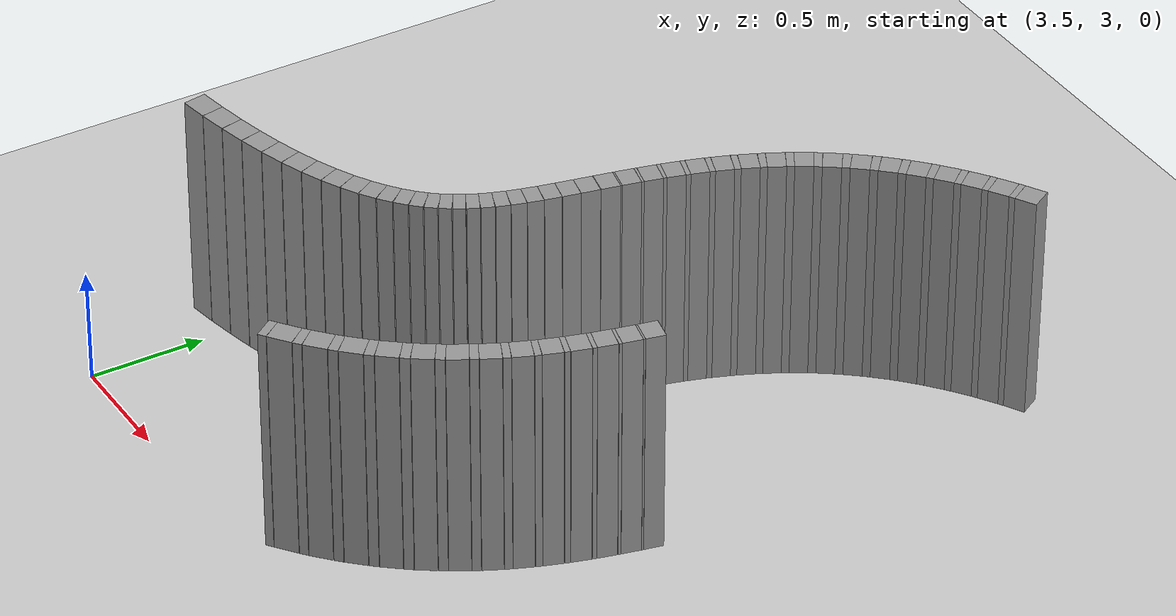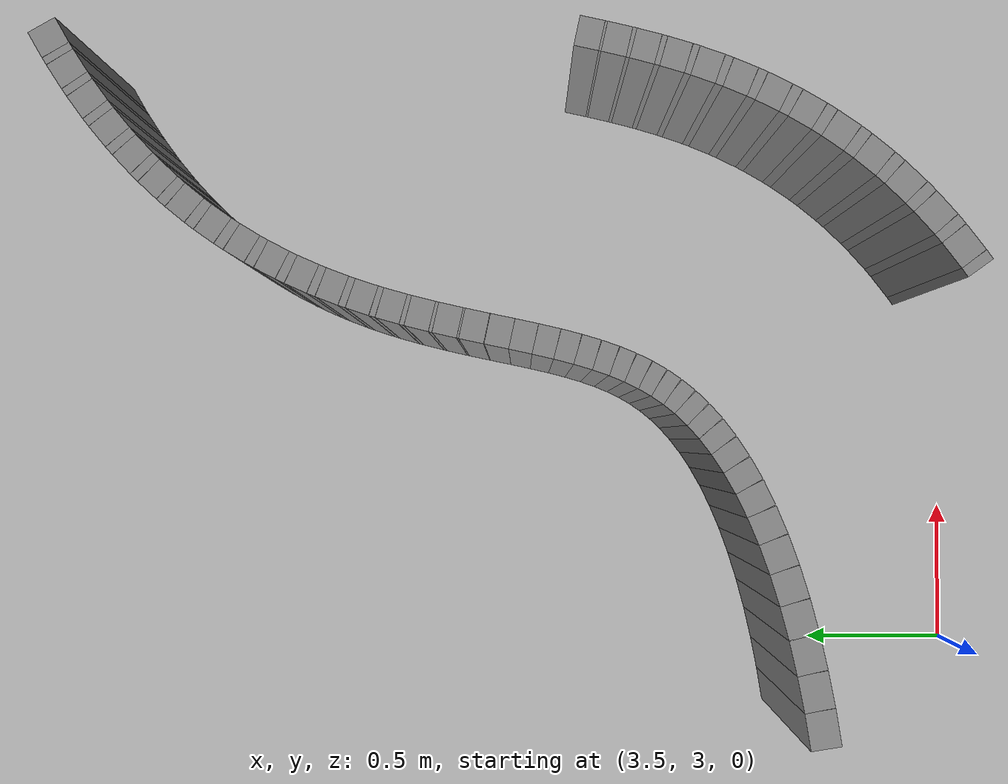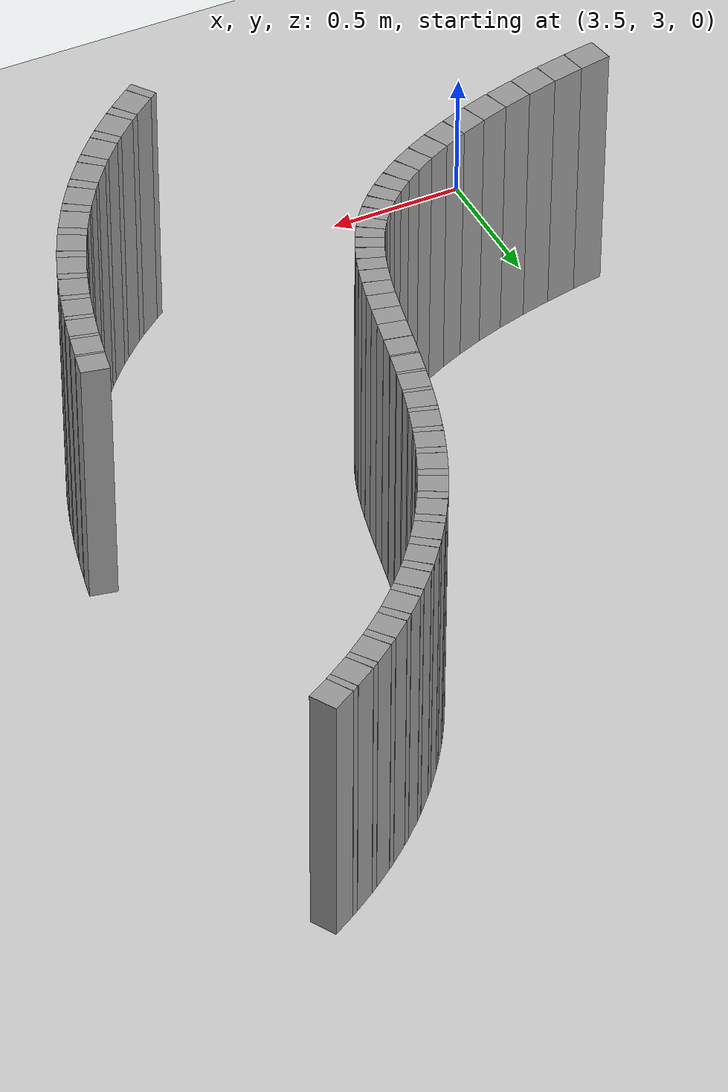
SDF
<sdf version="1.6">
 <world name="default">
  <include><uri>model://ground_plane</uri></include>
  <include><uri>model://sun</uri></include>
  <model name="wall_255_outward">
   <static>true</static>
   <link name="link">
    <collision name="collision">
     <geometry><box><size>0.0823065950242805 0.1 1.0</size></box></geometry>
    </collision>
    <visual name="visual">
     <geometry><box><size>0.0823065950242805 0.1 1.0</size></box></geometry>
     <material>
      <script><uri>file://media/materials/scripts/gazebo.material</uri><name>Gazebo/Gray</name></script>
     </material>
    </visual>
   </link>
   <pose>5.5540342374357845 4.377041698412825 0.5 0 0 -1.7806157218108025</pose>
  </model>
  <model name="wall_256_outward">
   <static>true</static>
   <link name="link">
    <collision name="collision">
     <geometry><box><size>0.007893287443352513 0.1 1.0</size></box></geometry>
    </collision>
    <visual name="visual">
     <geometry><box><size>0.007893287443352513 0.1 1.0</size></box></geometry>
     <material>
      <script><uri>file://media/materials/scripts/gazebo.material</uri><name>Gazebo/Gray</name></script>
     </material>
    </visual>
   </link>
   <pose>5.544610231509431 4.332937473080274 0.5 0 0 -1.788509091220344</pose>
  </model>
  <model name="wall_257_outward">
   <static>true</static>
   <link name="link">
    <collision name="collision">
     <geometry><box><size>0.08276006132037096 0.1 1.0</size></box></geometry>
    </collision>
    <visual name="visual">
     <geometry><box><size>0.08276006132037096 0.1 1.0</size></box></geometry>
     <material>
      <script><uri>file://media/materials/scripts/gazebo.material</uri><name>Gazebo/Gray</name></script>
     </material>
    </visual>
   </link>
   <pose>5.534501172480656 4.2887525869662415 0.5 0 0 -1.7964024606298625</pose>
  </model>
  <model name="wall_258_outward">
   <static>true</static>
   <link name="link">
    <collision name="collision">
     <geometry><box><size>0.012884007476464357 0.1 1.0</size></box></geometry>
    </collision>
    <visual name="visual">
     <geometry><box><size>0.012884007476464357 0.1 1.0</size></box></geometry>
     <material>
      <script><uri>file://media/materials/scripts/gazebo.material</uri><name>Gazebo/Gray</name></script>
     </material>
    </visual>
   </link>
   <pose>5.5237227424820485 4.242161513047656 0.5 0 0 -1.8092868245854612</pose>
  </model>
  <model name="wall_259_outward">
   <static>true</static>
   <link name="link">
    <collision name="collision">
     <geometry><box><size>0.08318186117913362 0.1 1.0</size></box></geometry>
    </collision>
    <visual name="visual">
     <geometry><box><size>0.08318186117913362 0.1 1.0</size></box></geometry>
     <material>
      <script><uri>file://media/materials/scripts/gazebo.material</uri><name>Gazebo/Gray</name></script>
     </material>
    </visual>
   </link>
   <pose>5.511855753227276 4.195618061642035 0.5 0 0 -1.8221711885410317</pose>
  </model>
  <model name="wall_260_outward">
   <static>true</static>
   <link name="link">
    <collision name="collision">
     <geometry><box><size>0.017905885627952804 0.1 1.0</size></box></geometry>
    </collision>
    <visual name="visual">
     <geometry><box><size>0.017905885627952804 0.1 1.0</size></box></geometry>
     <material>
      <script><uri>file://media/materials/scripts/gazebo.material</uri><name>Gazebo/Gray</name></script>
     </material>
    </visual>
   </link>
   <pose>5.4991287651282486 4.14670397863664 0.5 0 0 -1.84007803114011</pose>
  </model>
  <model name="wall_261_outward">
   <static>true</static>
   <link name="link">
    <collision name="collision">
     <geometry><box><size>0.08364015027208513 0.1 1.0</size></box></geometry>
    </collision>
    <visual name="visual">
     <geometry><box><size>0.08364015027208513 0.1 1.0</size></box></geometry>
     <material>
      <script><uri>file://media/materials/scripts/gazebo.material</uri><name>Gazebo/Gray</name></script>
     </material>
    </visual>
   </link>
   <pose>5.484901101588403 4.09796638649427 0.5 0 0 -1.8579848737391937</pose>
  </model>
  <model name="wall_262_outward">
   <static>true</static>
   <link name="link">
    <collision name="collision">
     <geometry><box><size>0.02284983359659462 0.1 1.0</size></box></geometry>
    </collision>
    <visual name="visual">
     <geometry><box><size>0.02284983359659462 0.1 1.0</size></box></geometry>
     <material>
      <script><uri>file://media/materials/scripts/gazebo.material</uri><name>Gazebo/Gray</name></script>
     </material>
    </visual>
   </link>
   <pose>5.469569562087384 4.046978902066114 0.5 0 0 -1.8808366961761713</pose>
  </model>
  <model name="wall_263_outward">
   <static>true</static>
   <link name="link">
    <collision name="collision">
     <geometry><box><size>0.08422196024305521 0.1 1.0</size></box></geometry>
    </collision>
    <visual name="visual">
     <geometry><box><size>0.08422196024305521 0.1 1.0</size></box></geometry>
     <material>
      <script><uri>file://media/materials/scripts/gazebo.material</uri><name>Gazebo/Gray</name></script>
     </material>
    </visual>
   </link>
   <pose>5.4523229196576395 3.9962995733995275 0.5 0 0 -1.9036885186131765</pose>
  </model>
  <model name="wall_264_outward">
   <static>true</static>
   <link name="link">
    <collision name="collision">
     <geometry><box><size>0.027566832550623976 0.1 1.0</size></box></geometry>
    </collision>
    <visual name="visual">
     <geometry><box><size>0.027566832550623976 0.1 1.0</size></box></geometry>
     <material>
      <script><uri>file://media/materials/scripts/gazebo.material</uri><name>Gazebo/Gray</name></script>
     </material>
    </visual>
   </link>
   <pose>5.433700477713545 3.9436028274653827 0.5 0 0 -1.9312588438366614</pose>
  </model>
  <model name="wall_265_outward">
   <static>true</static>
   <link name="link">
    <collision name="collision">
     <geometry><box><size>0.08503293473833458 0.1 1.0</size></box></geometry>
    </collision>
    <visual name="visual">
     <geometry><box><size>0.08503293473833458 0.1 1.0</size></box></geometry>
     <material>
      <script><uri>file://media/materials/scripts/gazebo.material</uri><name>Gazebo/Gray</name></script>
     </material>
    </visual>
   </link>
   <pose>5.412752088556587 3.891349631682776 0.5 0 0 -1.9588291690601691</pose>
  </model>
  <model name="wall_266_outward">
   <static>true</static>
   <link name="link">
    <collision name="collision">
     <geometry><box><size>0.031822554387531975 0.1 1.0</size></box></geometry>
    </collision>
    <visual name="visual">
     <geometry><box><size>0.031822554387531975 0.1 1.0</size></box></geometry>
     <material>
      <script><uri>file://media/materials/scripts/gazebo.material</uri><name>Gazebo/Gray</name></script>
     </material>
    </visual>
   </link>
   <pose>5.390179240938409 3.8374647298475697 0.5 0 0 -1.9906570968808106</pose>
  </model>
  <model name="wall_267_outward">
   <static>true</static>
   <link name="link">
    <collision name="collision">
     <geometry><box><size>0.08618125440583424 0.1 1.0</size></box></geometry>
    </collision>
    <visual name="visual">
     <geometry><box><size>0.08618125440583424 0.1 1.0</size></box></geometry>
     <material>
      <script><uri>file://media/materials/scripts/gazebo.material</uri><name>Gazebo/Gray</name></script>
     </material>
    </visual>
   </link>
   <pose>5.364884840391629 3.7841662914995933 0.5 0 0 -2.0224850247014197</pose>
  </model>
  <model name="wall_268_outward">
   <static>true</static>
   <link name="link">
    <collision name="collision">
     <geometry><box><size>0.03538896782805799 0.1 1.0</size></box></geometry>
    </collision>
    <visual name="visual">
     <geometry><box><size>0.03538896782805799 0.1 1.0</size></box></geometry>
     <material>
      <script><uri>file://media/materials/scripts/gazebo.material</uri><name>Gazebo/Gray</name></script>
     </material>
    </visual>
   </link>
   <pose>5.337794469029871 3.729760535215286 0.5 0 0 -2.0578813834291503</pose>
  </model>
  <model name="wall_269_outward">
   <static>true</static>
   <link name="link">
    <collision name="collision">
     <geometry><box><size>0.0877751730826177 0.1 1.0</size></box></geometry>
    </collision>
    <visual name="visual">
     <geometry><box><size>0.0877751730826177 0.1 1.0</size></box></geometry>
     <material>
      <script><uri>file://media/materials/scripts/gazebo.material</uri><name>Gazebo/Gray</name></script>
     </material>
    </visual>
   </link>
   <pose>5.307611220253905 3.6760916426194035 0.5 0 0 -2.0932777421568702</pose>
  </model>
  <model name="wall_270_outward">
   <static>true</static>
   <link name="link">
    <collision name="collision">
     <geometry><box><size>0.03801697591939937 0.1 1.0</size></box></geometry>
    </collision>
    <visual name="visual">
     <geometry><box><size>0.03801697591939937 0.1 1.0</size></box></geometry>
     <material>
      <script><uri>file://media/materials/scripts/gazebo.material</uri><name>Gazebo/Gray</name></script>
     </material>
    </visual>
   </link>
   <pose>5.2756046897010105 3.6219594706756224 0.5 0 0 -2.1313038816327396</pose>
  </model>
  <model name="wall_271_outward">
   <static>true</static>
   <link name="link">
    <collision name="collision">
     <geometry><box><size>0.0898987762643298 0.1 1.0</size></box></geometry>
    </collision>
    <visual name="visual">
     <geometry><box><size>0.0898987762643298 0.1 1.0</size></box></geometry>
     <material>
      <script><uri>file://media/materials/scripts/gazebo.material</uri><name>Gazebo/Gray</name></script>
     </material>
    </visual>
   </link>
   <pose>5.240173561430167 3.5687240526516257 0.5 0 0 -2.1693300211086215</pose>
  </model>
  <model name="wall_272_outward">
   <static>true</static>
   <link name="link">
    <collision name="collision">
     <geometry><box><size>0.03957538245784664 0.1 1.0</size></box></geometry>
    </collision>
    <visual name="visual">
     <geometry><box><size>0.03957538245784664 0.1 1.0</size></box></geometry>
     <material>
      <script><uri>file://media/materials/scripts/gazebo.material</uri><name>Gazebo/Gray</name></script>
     </material>
    </visual>
   </link>
   <pose>5.203060402320267 3.5156947281098354 0.5 0 0 -2.2089157414200664</pose>
  </model>
  <model name="wall_273_outward">
   <static>true</static>
   <link name="link">
    <collision name="collision">
     <geometry><box><size>0.09260326282201257 0.1 1.0</size></box></geometry>
    </collision>
    <visual name="visual">
     <geometry><box><size>0.09260326282201257 0.1 1.0</size></box></geometry>
     <material>
      <script><uri>file://media/materials/scripts/gazebo.material</uri><name>Gazebo/Gray</name></script>
     </material>
    </visual>
   </link>
   <pose>5.162241707667242 3.4637313063079334 0.5 0 0 -2.248501461731513</pose>
  </model>
  <model name="wall_274_outward">
   <static>true</static>
   <link name="link">
    <collision name="collision">
     <geometry><box><size>0.040026259323675234 0.1 1.0</size></box></geometry>
    </collision>
    <visual name="visual">
     <geometry><box><size>0.040026259323675234 0.1 1.0</size></box></geometry>
     <material>
      <script><uri>file://media/materials/scripts/gazebo.material</uri><name>Gazebo/Gray</name></script>
     </material>
    </visual>
   </link>
   <pose>5.120047918348929 3.4125859593850265 0.5 0 0 -2.2885384164557045</pose>
  </model>
  <model name="wall_275_outward">
   <static>true</static>
   <link name="link">
    <collision name="collision">
     <geometry><box><size>0.09589452172944031 0.1 1.0</size></box></geometry>
    </collision>
    <visual name="visual">
     <geometry><box><size>0.09589452172944031 0.1 1.0</size></box></geometry>
     <material>
      <script><uri>file://media/materials/scripts/gazebo.material</uri><name>Gazebo/Gray</name></script>
     </material>
    </visual>
   </link>
   <pose>5.073930945539713 3.3626830381567228 0.5 0 0 -2.3285753711798995</pose>
  </model>
  <model name="wall_276_outward">
   <static>true</static>
   <link name="link">
    <collision name="collision">
     <geometry><box><size>0.03946402137485216 0.1 1.0</size></box></geometry>
    </collision>
    <visual name="visual">
     <geometry><box><size>0.03946402137485216 0.1 1.0</size></box></geometry>
     <material>
      <script><uri>file://media/materials/scripts/gazebo.material</uri><name>Gazebo/Gray</name></script>
     </material>
    </visual>
   </link>
   <pose>5.026859252688631 3.3140696089665913 0.5 0 0 -2.3680496433440448</pose>
  </model>
  <model name="wall_277_outward">
   <static>true</static>
   <link name="link">
    <collision name="collision">
     <geometry><box><size>0.0997280472433963 0.1 1.0</size></box></geometry>
    </collision>
    <visual name="visual">
     <geometry><box><size>0.0997280472433963 0.1 1.0</size></box></geometry>
     <material>
      <script><uri>file://media/materials/scripts/gazebo.material</uri><name>Gazebo/Gray</name></script>
     </material>
    </visual>
   </link>
   <pose>4.975720397941294 3.266879646392719 0.5 0 0 -2.4075239155081922</pose>
  </model>
  <model name="wall_278_outward">
   <static>true</static>
   <link name="link">
    <collision name="collision">
     <geometry><box><size>0.038052462075673935 0.1 1.0</size></box></geometry>
    </collision>
    <visual name="visual">
     <geometry><box><size>0.038052462075673935 0.1 1.0</size></box></geometry>
     <material>
      <script><uri>file://media/materials/scripts/gazebo.material</uri><name>Gazebo/Gray</name></script>
     </material>
    </visual>
   </link>
   <pose>4.924097718772908 3.2212771032453054 0.5 0 0 -2.4455855668360664</pose>
  </model>
  <model name="wall_279_outward">
   <static>true</static>
   <link name="link">
    <collision name="collision">
     <geometry><box><size>0.10401185915973808 0.1 1.0</size></box></geometry>
    </collision>
    <visual name="visual">
     <geometry><box><size>0.10401185915973808 0.1 1.0</size></box></geometry>
     <material>
      <script><uri>file://media/materials/scripts/gazebo.material</uri><name>Gazebo/Gray</name></script>
     </material>
    </visual>
   </link>
   <pose>4.868347124614208 3.177277037091784 0.5 0 0 -2.4836472181639486</pose>
  </model>
  <model name="wall_280_outward">
   <static>true</static>
   <link name="link">
    <collision name="collision">
     <geometry><box><size>0.03601517791794918 0.1 1.0</size></box></geometry>
    </collision>
    <visual name="visual">
     <geometry><box><size>0.03601517791794918 0.1 1.0</size></box></geometry>
     <material>
      <script><uri>file://media/materials/scripts/gazebo.material</uri><name>Gazebo/Gray</name></script>
     </material>
    </visual>
   </link>
   <pose>4.812561572975367 3.1349846041642895 0.5 0 0 -2.519670186469389</pose>
  </model>
  <model name="wall_444_inward">
   <static>true</static>
   <link name="link">
    <collision name="collision">
     <geometry><box><size>0.09368383440025561 0.1 1.0</size></box></geometry>
    </collision>
    <visual name="visual">
     <geometry><box><size>0.09368383440025561 0.1 1.0</size></box></geometry>
     <material>
      <script><uri>file://media/materials/scripts/gazebo.material</uri><name>Gazebo/Gray</name></script>
     </material>
    </visual>
   </link>
   <pose>5.535024009591168 6.116495650377024 0.5 0 0 -2.618730691392389</pose>
  </model>
  <model name="wall_445_inward">
   <static>true</static>
   <link name="link">
    <collision name="collision">
     <geometry><box><size>0.02577080440746444 0.1 1.0</size></box></geometry>
    </collision>
    <visual name="visual">
     <geometry><box><size>0.02577080440746444 0.1 1.0</size></box></geometry>
     <material>
      <script><uri>file://media/materials/scripts/gazebo.material</uri><name>Gazebo/Gray</name></script>
     </material>
    </visual>
   </link>
   <pose>5.483446173195778 6.086384546890491 0.5 0 0 -2.5929570335859453</pose>
  </model>
  <model name="wall_446_inward">
   <static>true</static>
   <link name="link">
    <collision name="collision">
     <geometry><box><size>0.09063537158946912 0.1 1.0</size></box></geometry>
    </collision>
    <visual name="visual">
     <geometry><box><size>0.09063537158946912 0.1 1.0</size></box></geometry>
     <material>
      <script><uri>file://media/materials/scripts/gazebo.material</uri><name>Gazebo/Gray</name></script>
     </material>
    </visual>
   </link>
   <pose>5.434407067928667 6.055041641307542 0.5 0 0 -2.5671833757795297</pose>
  </model>
  <model name="wall_447_inward">
   <static>true</static>
   <link name="link">
    <collision name="collision">
     <geometry><box><size>0.027843026823508768 0.1 1.0</size></box></geometry>
    </collision>
    <visual name="visual">
     <geometry><box><size>0.027843026823508768 0.1 1.0</size></box></geometry>
     <material>
      <script><uri>file://media/materials/scripts/gazebo.material</uri><name>Gazebo/Gray</name></script>
     </material>
    </visual>
   </link>
   <pose>5.384890104255568 6.0225321988587535 0.5 0 0 -2.5393367502229385</pose>
  </model>
  <model name="wall_448_inward">
   <static>true</static>
   <link name="link">
    <collision name="collision">
     <geometry><box><size>0.08772571150157821 0.1 1.0</size></box></geometry>
    </collision>
    <visual name="visual">
     <geometry><box><size>0.08772571150157821 0.1 1.0</size></box></geometry>
     <material>
      <script><uri>file://media/materials/scripts/gazebo.material</uri><name>Gazebo/Gray</name></script>
     </material>
    </visual>
   </link>
   <pose>5.337978201229495 5.988800415696684 0.5 0 0 -2.511490124666345</pose>
  </model>
  <model name="wall_449_inward">
   <static>true</static>
   <link name="link">
    <collision name="collision">
     <geometry><box><size>0.029943594946463287 0.1 1.0</size></box></geometry>
    </collision>
    <visual name="visual">
     <geometry><box><size>0.029943594946463287 0.1 1.0</size></box></geometry>
     <material>
      <script><uri>file://media/materials/scripts/gazebo.material</uri><name>Gazebo/Gray</name></script>
     </material>
    </visual>
   </link>
   <pose>5.290711317688141 5.953775150623846 0.5 0 0 -2.481542053248081</pose>
  </model>
  <model name="wall_450_inward">
   <static>true</static>
   <link name="link">
    <collision name="collision">
     <geometry><box><size>0.0850302432390873 0.1 1.0</size></box></geometry>
    </collision>
    <visual name="visual">
     <geometry><box><size>0.0850302432390873 0.1 1.0</size></box></geometry>
     <material>
      <script><uri>file://media/materials/scripts/gazebo.material</uri><name>Gazebo/Gray</name></script>
     </material>
    </visual>
   </link>
   <pose>5.24609452442016 5.917532678654615 0.5 0 0 -2.451593981829789</pose>
  </model>
  <model name="wall_451_inward">
   <static>true</static>
   <link name="link">
    <collision name="collision">
     <geometry><box><size>0.03191278517466188 0.1 1.0</size></box></geometry>
    </collision>
    <visual name="visual">
     <geometry><box><size>0.03191278517466188 0.1 1.0</size></box></geometry>
     <material>
      <script><uri>file://media/materials/scripts/gazebo.material</uri><name>Gazebo/Gray</name></script>
     </material>
    </visual>
   </link>
   <pose>5.201328953234746 5.879925890088684 0.5 0 0 -2.419675777370201</pose>
  </model>
  <model name="wall_452_inward">
   <static>true</static>
   <link name="link">
    <collision name="collision">
     <geometry><box><size>0.08262645169023534 0.1 1.0</size></box></geometry>
    </collision>
    <visual name="visual">
     <geometry><box><size>0.08262645169023534 0.1 1.0</size></box></geometry>
     <material>
      <script><uri>file://media/materials/scripts/gazebo.material</uri><name>Gazebo/Gray</name></script>
     </material>
    </visual>
   </link>
   <pose>5.159232829206558 5.841105096567406 0.5 0 0 -2.3877575729106346</pose>
  </model>
  <model name="wall_453_inward">
   <static>true</static>
   <link name="link">
    <collision name="collision">
     <geometry><box><size>0.03356139993666362 0.1 1.0</size></box></geometry>
    </collision>
    <visual name="visual">
     <geometry><box><size>0.03356139993666362 0.1 1.0</size></box></geometry>
     <material>
      <script><uri>file://media/materials/scripts/gazebo.material</uri><name>Gazebo/Gray</name></script>
     </material>
    </visual>
   </link>
   <pose>5.117270685699895 5.800939170240542 0.5 0 0 -2.3541898693663206</pose>
  </model>
  <model name="wall_454_inward">
   <static>true</static>
   <link name="link">
    <collision name="collision">
     <geometry><box><size>0.08058768787377621 0.1 1.0</size></box></geometry>
    </collision>
    <visual name="visual">
     <geometry><box><size>0.08058768787377621 0.1 1.0</size></box></geometry>
     <material>
      <script><uri>file://media/materials/scripts/gazebo.material</uri><name>Gazebo/Gray</name></script>
     </material>
    </visual>
   </link>
   <pose>5.077968038417238 5.759562320910016 0.5 0 0 -2.3206221658219843</pose>
  </model>
  <model name="wall_455_inward">
   <static>true</static>
   <link name="link">
    <collision name="collision">
     <geometry><box><size>0.03462786945578779 0.1 1.0</size></box></geometry>
    </collision>
    <visual name="visual">
     <geometry><box><size>0.03462786945578779 0.1 1.0</size></box></geometry>
     <material>
      <script><uri>file://media/materials/scripts/gazebo.material</uri><name>Gazebo/Gray</name></script>
     </material>
    </visual>
   </link>
   <pose>5.03915351311551 5.71700351455099 0.5 0 0 -2.285987372311184</pose>
  </model>
  <model name="wall_456_inward">
   <static>true</static>
   <link name="link">
    <collision name="collision">
     <geometry><box><size>0.07897273843238788 0.1 1.0</size></box></geometry>
    </collision>
    <visual name="visual">
     <geometry><box><size>0.07897273843238788 0.1 1.0</size></box></geometry>
     <material>
      <script><uri>file://media/materials/scripts/gazebo.material</uri><name>Gazebo/Gray</name></script>
     </material>
    </visual>
   </link>
   <pose>5.0029538699427745 5.673242340644263 0.5 0 0 -2.25135257880039</pose>
  </model>
  <model name="wall_457_inward">
   <static>true</static>
   <link name="link">
    <collision name="collision">
     <geometry><box><size>0.034952066353813226 0.1 1.0</size></box></geometry>
    </collision>
    <visual name="visual">
     <geometry><box><size>0.034952066353813226 0.1 1.0</size></box></geometry>
     <material>
      <script><uri>file://media/materials/scripts/gazebo.material</uri><name>Gazebo/Gray</name></script>
     </material>
    </visual>
   </link>
   <pose>4.967593141325269 5.628593814526475 0.5 0 0 -2.216393392017324</pose>
  </model>
  <model name="wall_458_inward">
   <static>true</static>
   <link name="link">
    <collision name="collision">
     <geometry><box><size>0.07781610253314558 0.1 1.0</size></box></geometry>
    </collision>
    <visual name="visual">
     <geometry><box><size>0.07781610253314558 0.1 1.0</size></box></geometry>
     <material>
      <script><uri>file://media/materials/scripts/gazebo.material</uri><name>Gazebo/Gray</name></script>
     </material>
    </visual>
   </link>
   <pose>4.93476874677653 5.582758313240976 0.5 0 0 -2.1814342052342584</pose>
  </model>
  <model name="wall_459_inward">
   <static>true</static>
   <link name="link">
    <collision name="collision">
     <geometry><box><size>0.03439057420850791 0.1 1.0</size></box></geometry>
    </collision>
    <visual name="visual">
     <geometry><box><size>0.03439057420850791 0.1 1.0</size></box></geometry>
     <material>
      <script><uri>file://media/materials/scripts/gazebo.material</uri><name>Gazebo/Gray</name></script>
     </material>
    </visual>
   </link>
   <pose>4.903089963204888 5.536463089533912 0.5 0 0 -2.147036848393466</pose>
  </model>
  <model name="wall_460_inward">
   <static>true</static>
   <link name="link">
    <collision name="collision">
     <geometry><box><size>0.07712188896854742 0.1 1.0</size></box></geometry>
    </collision>
    <visual name="visual">
     <geometry><box><size>0.07712188896854742 0.1 1.0</size></box></geometry>
     <material>
      <script><uri>file://media/materials/scripts/gazebo.material</uri><name>Gazebo/Gray</name></script>
     </material>
    </visual>
   </link>
   <pose>4.873834177469153 5.48900708977124 0.5 0 0 -2.112639491552674</pose>
  </model>
  <model name="wall_461_inward">
   <static>true</static>
   <link name="link">
    <collision name="collision">
     <geometry><box><size>0.03288519535476275 0.1 1.0</size></box></geometry>
    </collision>
    <visual name="visual">
     <geometry><box><size>0.03288519535476275 0.1 1.0</size></box></geometry>
     <material>
      <script><uri>file://media/materials/scripts/gazebo.material</uri><name>Gazebo/Gray</name></script>
     </material>
    </visual>
   </link>
   <pose>4.845935821583279 5.441611040065383 0.5 0 0 -2.0797483661054974</pose>
  </model>
  <model name="wall_462_inward">
   <static>true</static>
   <link name="link">
    <collision name="collision">
     <geometry><box><size>0.07686442731888359 0.1 1.0</size></box></geometry>
    </collision>
    <visual name="visual">
     <geometry><box><size>0.07686442731888359 0.1 1.0</size></box></geometry>
     <material>
      <script><uri>file://media/materials/scripts/gazebo.material</uri><name>Gazebo/Gray</name></script>
     </material>
    </visual>
   </link>
   <pose>4.82031118396506 5.393093627785104 0.5 0 0 -2.046857240658347</pose>
  </model>
  <model name="wall_463_inward">
   <static>true</static>
   <link name="link">
    <collision name="collision">
     <geometry><box><size>0.030518170506159365 0.1 1.0</size></box></geometry>
    </collision>
    <visual name="visual">
     <geometry><box><size>0.030518170506159365 0.1 1.0</size></box></geometry>
     <material>
      <script><uri>file://media/materials/scripts/gazebo.material</uri><name>Gazebo/Gray</name></script>
     </material>
    </visual>
   </link>
   <pose>4.7961226030954975 5.3451653290380445 0.5 0 0 -2.016334330938243</pose>
  </model>
  <model name="wall_464_inward">
   <static>true</static>
   <link name="link">
    <collision name="collision">
     <geometry><box><size>0.07698728434426214 0.1 1.0</size></box></geometry>
    </collision>
    <visual name="visual">
     <geometry><box><size>0.07698728434426214 0.1 1.0</size></box></geometry>
     <material>
      <script><uri>file://media/materials/scripts/gazebo.material</uri><name>Gazebo/Gray</name></script>
     </material>
    </visual>
   </link>
   <pose>4.774026019990505 5.296169925846679 0.5 0 0 -1.98581142121812</pose>
  </model>
  <model name="wall_465_inward">
   <static>true</static>
   <link name="link">
    <collision name="collision">
     <geometry><box><size>0.027423500991354918 0.1 1.0</size></box></geometry>
    </collision>
    <visual name="visual">
     <geometry><box><size>0.027423500991354918 0.1 1.0</size></box></geometry>
     <material>
      <script><uri>file://media/materials/scripts/gazebo.material</uri><name>Gazebo/Gray</name></script>
     </material>
    </visual>
   </link>
   <pose>4.753322793122565 5.248249341505463 0.5 0 0 -1.9583844817629552</pose>
  </model>
  <model name="wall_466_inward">
   <static>true</static>
   <link name="link">
    <collision name="collision">
     <geometry><box><size>0.07741348566883637 0.1 1.0</size></box></geometry>
    </collision>
    <visual name="visual">
     <geometry><box><size>0.07741348566883637 0.1 1.0</size></box></geometry>
     <material>
      <script><uri>file://media/materials/scripts/gazebo.material</uri><name>Gazebo/Gray</name></script>
     </material>
    </visual>
   </link>
   <pose>4.734499118786335 5.19933136411122 0.5 0 0 -1.9309575423077803</pose>
  </model>
  <model name="wall_467_inward">
   <static>true</static>
   <link name="link">
    <collision name="collision">
     <geometry><box><size>0.023764589330672818 0.1 1.0</size></box></geometry>
    </collision>
    <visual name="visual">
     <geometry><box><size>0.023764589330672818 0.1 1.0</size></box></geometry>
     <material>
      <script><uri>file://media/materials/scripts/gazebo.material</uri><name>Gazebo/Gray</name></script>
     </material>
    </visual>
   </link>
   <pose>4.716935714845002 5.15189174169244 0.5 0 0 -1.9071907155438683</pose>
  </model>
  <model name="wall_468_inward">
   <static>true</static>
   <link name="link">
    <collision name="collision">
     <geometry><box><size>0.07805531719050621 0.1 1.0</size></box></geometry>
    </collision>
    <visual name="visual">
     <geometry><box><size>0.07805531719050621 0.1 1.0</size></box></geometry>
     <material>
      <script><uri>file://media/materials/scripts/gazebo.material</uri><name>Gazebo/Gray</name></script>
     </material>
    </visual>
   </link>
   <pose>4.701010196378722 5.103539500101925 0.5 0 0 -1.8834238887799553</pose>
  </model>
  <model name="wall_469_inward">
   <static>true</static>
   <link name="link">
    <collision name="collision">
     <geometry><box><size>0.01973379671983548 0.1 1.0</size></box></geometry>
    </collision>
    <visual name="visual">
     <geometry><box><size>0.01973379671983548 0.1 1.0</size></box></geometry>
     <material>
      <script><uri>file://media/materials/scripts/gazebo.material</uri><name>Gazebo/Gray</name></script>
     </material>
    </visual>
   </link>
   <pose>4.686158055926487 5.056956867613351 0.5 0 0 -1.8636888110374532</pose>
  </model>
  <model name="wall_470_inward">
   <static>true</static>
   <link name="link">
    <collision name="collision">
     <geometry><box><size>0.07882297314642103 0.1 1.0</size></box></geometry>
    </collision>
    <visual name="visual">
     <geometry><box><size>0.07882297314642103 0.1 1.0</size></box></geometry>
     <material>
      <script><uri>file://media/materials/scripts/gazebo.material</uri><name>Gazebo/Gray</name></script>
     </material>
    </visual>
   </link>
   <pose>4.672677098451429 5.009559910348701 0.5 0 0 -1.8439537332949363</pose>
  </model>
  <model name="wall_471_inward">
   <static>true</static>
   <link name="link">
    <collision name="collision">
     <geometry><box><size>0.015448447181984792 0.1 1.0</size></box></geometry>
    </collision>
    <visual name="visual">
     <geometry><box><size>0.015448447181984792 0.1 1.0</size></box></geometry>
     <material>
      <script><uri>file://media/materials/scripts/gazebo.material</uri><name>Gazebo/Gray</name></script>
     </material>
    </visual>
   </link>
   <pose>4.660076302664152 4.96414050412274 0.5 0 0 -1.8285046715733329</pose>
  </model>
  <model name="wall_472_inward">
   <static>true</static>
   <link name="link">
    <collision name="collision">
     <geometry><box><size>0.0796356730517888 0.1 1.0</size></box></geometry>
    </collision>
    <visual name="visual">
     <geometry><box><size>0.0796356730517888 0.1 1.0</size></box></geometry>
     <material>
      <script><uri>file://media/materials/scripts/gazebo.material</uri><name>Gazebo/Gray</name></script>
     </material>
    </visual>
   </link>
   <pose>4.648555505092343 4.918016266480736 0.5 0 0 -1.8130556098517139</pose>
  </model>
  <model name="wall_473_inward">
   <static>true</static>
   <link name="link">
    <collision name="collision">
     <geometry><box><size>0.011003774610323525 0.1 1.0</size></box></geometry>
    </collision>
    <visual name="visual">
     <geometry><box><size>0.011003774610323525 0.1 1.0</size></box></geometry>
     <material>
      <script><uri>file://media/materials/scripts/gazebo.material</uri><name>Gazebo/Gray</name></script>
     </material>
    </visual>
   </link>
   <pose>4.6377423134420965 4.874005748106184 0.5 0 0 -1.8020516131674615</pose>
  </model>
  <model name="wall_474_inward">
   <static>true</static>
   <link name="link">
    <collision name="collision">
     <geometry><box><size>0.08042689987492393 0.1 1.0</size></box></geometry>
    </collision>
    <visual name="visual">
     <geometry><box><size>0.08042689987492393 0.1 1.0</size></box></geometry>
     <material>
      <script><uri>file://media/materials/scripts/gazebo.material</uri><name>Gazebo/Gray</name></script>
     </material>
    </visual>
   </link>
   <pose>4.627695655807859 4.829408327338095 0.5 0 0 -1.7910476164833151</pose>
  </model>
  <model name="wall_475_inward">
   <static>true</static>
   <link name="link">
    <collision name="collision">
     <geometry><box><size>0.006441471105167219 0.1 1.0</size></box></geometry>
    </collision>
    <visual name="visual">
     <geometry><box><size>0.006441471105167219 0.1 1.0</size></box></geometry>
     <material>
      <script><uri>file://media/materials/scripts/gazebo.material</uri><name>Gazebo/Gray</name></script>
     </material>
    </visual>
   </link>
   <pose>4.618226638381568 4.787018932389328 0.5 0 0 -1.784606100831876</pose>
  </model>
  <model name="wall_476_inward">
   <static>true</static>
   <link name="link">
    <collision name="collision">
     <geometry><box><size>0.08114924077124099 0.1 1.0</size></box></geometry>
    </collision>
    <visual name="visual">
     <geometry><box><size>0.08114924077124099 0.1 1.0</size></box></geometry>
     <material>
      <script><uri>file://media/materials/scripts/gazebo.material</uri><name>Gazebo/Gray</name></script>
     </material>
    </visual>
   </link>
   <pose>4.609189532248754 4.744166178776631 0.5 0 0 -1.7781645851802965</pose>
  </model>
  <model name="wall_477_inward">
   <static>true</static>
   <link name="link">
    <collision name="collision">
     <geometry><box><size>0.001775421859202244 0.1 1.0</size></box></geometry>
    </collision>
    <visual name="visual">
     <geometry><box><size>0.001775421859202244 0.1 1.0</size></box></geometry>
     <material>
      <script><uri>file://media/materials/scripts/gazebo.material</uri><name>Gazebo/Gray</name></script>
     </material>
    </visual>
   </link>
   <pose>4.60065459212508 4.703591807535124 0.5 0 0 -1.7763891623881096</pose>
  </model>
  <model name="wall_478_inward">
   <static>true</static>
   <link name="link">
    <collision name="collision">
     <geometry><box><size>0.08027631666996497 0.1 1.0</size></box></geometry>
    </collision>
    <visual name="visual">
     <geometry><box><size>0.08027631666996497 0.1 1.0</size></box></geometry>
     <material>
      <script><uri>file://media/materials/scripts/gazebo.material</uri><name>Gazebo/Gray</name></script>
     </material>
    </visual>
   </link>
   <pose>4.592349035886221 4.663415451650547 0.5 0 0 -1.7746137395964374</pose>
  </model>
  <model name="wall_479_inward">
   <static>true</static>
   <link name="link">
    <collision name="collision">
     <geometry><box><size>0.07685932829306989 0.1 1.0</size></box></geometry>
    </collision>
    <visual name="visual">
     <geometry><box><size>0.07685932829306989 0.1 1.0</size></box></geometry>
     <material>
      <script><uri>file://media/materials/scripts/gazebo.material</uri><name>Gazebo/Gray</name></script>
     </material>
    </visual>
   </link>
   <pose>4.576220447957466 4.586521265820098 0.5 0 0 -1.7806157218108019</pose>
  </model>
  <model name="wall_480_inward">
   <static>true</static>
   <link name="link">
    <collision name="collision">
     <geometry><box><size>0.07237075616358718 0.1 1.0</size></box></geometry>
    </collision>
    <visual name="visual">
     <geometry><box><size>0.07237075616358718 0.1 1.0</size></box></geometry>
     <material>
      <script><uri>file://media/materials/scripts/gazebo.material</uri><name>Gazebo/Gray</name></script>
     </material>
    </visual>
   </link>
   <pose>4.560121625341075 4.51366602661647 0.5 0 0 -1.7964024606298645</pose>
  </model>
  <model name="wall_481_inward">
   <static>true</static>
   <link name="link">
    <collision name="collision">
     <geometry><box><size>0.06778494428680856 0.1 1.0</size></box></geometry>
    </collision>
    <visual name="visual">
     <geometry><box><size>0.06778494428680856 0.1 1.0</size></box></geometry>
     <material>
      <script><uri>file://media/materials/scripts/gazebo.material</uri><name>Gazebo/Gray</name></script>
     </material>
    </visual>
   </link>
   <pose>4.543596785703538 4.445570355379894 0.5 0 0 -1.822171188541038</pose>
  </model>
  <model name="wall_482_inward">
   <static>true</static>
   <link name="link">
    <collision name="collision">
     <geometry><box><size>0.06325787133695308 0.1 1.0</size></box></geometry>
    </collision>
    <visual name="visual">
     <geometry><box><size>0.06325787133695308 0.1 1.0</size></box></geometry>
     <material>
      <script><uri>file://media/materials/scripts/gazebo.material</uri><name>Gazebo/Gray</name></script>
     </material>
    </visual>
   </link>
   <pose>4.526207394261353 4.382409535663718 0.5 0 0 -1.857984873739196</pose>
  </model>
  <model name="wall_483_inward">
   <static>true</static>
   <link name="link">
    <collision name="collision">
     <geometry><box><size>0.059005403237026945 0.1 1.0</size></box></geometry>
    </collision>
    <visual name="visual">
     <geometry><box><size>0.059005403237026945 0.1 1.0</size></box></geometry>
     <material>
      <script><uri>file://media/materials/scripts/gazebo.material</uri><name>Gazebo/Gray</name></script>
     </material>
    </visual>
   </link>
   <pose>4.507607447454948 4.3241929552678045 0.5 0 0 -1.9036885186131693</pose>
  </model>
  <model name="wall_484_inward">
   <static>true</static>
   <link name="link">
    <collision name="collision">
     <geometry><box><size>0.05532493846472902 0.1 1.0</size></box></geometry>
    </collision>
    <visual name="visual">
     <geometry><box><size>0.05532493846472902 0.1 1.0</size></box></geometry>
     <material>
      <script><uri>file://media/materials/scripts/gazebo.material</uri><name>Gazebo/Gray</name></script>
     </material>
    </visual>
   </link>
   <pose>4.487500019610693 4.270704009361737 0.5 0 0 -1.9588291690601745</pose>
  </model>
  <model name="wall_485_inward">
   <static>true</static>
   <link name="link">
    <collision name="collision">
     <geometry><box><size>0.05255634017920114 0.1 1.0</size></box></geometry>
    </collision>
    <visual name="visual">
     <geometry><box><size>0.05255634017920114 0.1 1.0</size></box></geometry>
     <material>
      <script><uri>file://media/materials/scripts/gazebo.material</uri><name>Gazebo/Gray</name></script>
     </material>
    </visual>
   </link>
   <pose>4.465563379735609 4.2214553355677795 0.5 0 0 -2.022485024701413</pose>
  </model>
  <model name="wall_486_inward">
   <static>true</static>
   <link name="link">
    <collision name="collision">
     <geometry><box><size>0.05104735938932073 0.1 1.0</size></box></geometry>
    </collision>
    <visual name="visual">
     <geometry><box><size>0.05104735938932073 0.1 1.0</size></box></geometry>
     <material>
      <script><uri>file://media/materials/scripts/gazebo.material</uri><name>Gazebo/Gray</name></script>
     </material>
    </visual>
   </link>
   <pose>4.441356206039355 4.175694168383349 0.5 0 0 -2.0932777421568733</pose>
  </model>
  <model name="wall_487_inward">
   <static>true</static>
   <link name="link">
    <collision name="collision">
     <geometry><box><size>0.05107333169987997 0.1 1.0</size></box></geometry>
    </collision>
    <visual name="visual">
     <geometry><box><size>0.05107333169987997 0.1 1.0</size></box></geometry>
     <material>
      <script><uri>file://media/materials/scripts/gazebo.material</uri><name>Gazebo/Gray</name></script>
     </material>
    </visual>
   </link>
   <pose>4.414230906106925 4.132478327663872 0.5 0 0 -2.1693300211086193</pose>
  </model>
  <model name="wall_488_inward">
   <static>true</static>
   <link name="link">
    <collision name="collision">
     <geometry><box><size>0.05277087703559211 0.1 1.0</size></box></geometry>
    </collision>
    <visual name="visual">
     <geometry><box><size>0.05277087703559211 0.1 1.0</size></box></geometry>
     <material>
      <script><uri>file://media/materials/scripts/gazebo.material</uri><name>Gazebo/Gray</name></script>
     </material>
    </visual>
   </link>
   <pose>4.383298886549019 4.0908262705634115 0.5 0 0 -2.2485014617315033</pose>
  </model>
  <model name="wall_489_inward">
   <static>true</static>
   <link name="link">
    <collision name="collision">
     <geometry><box><size>0.056117947183102965 0.1 1.0</size></box></geometry>
    </collision>
    <visual name="visual">
     <geometry><box><size>0.056117947183102965 0.1 1.0</size></box></geometry>
     <material>
      <script><uri>file://media/materials/scripts/gazebo.material</uri><name>Gazebo/Gray</name></script>
     </material>
    </visual>
   </link>
   <pose>4.347469822482774 4.049890617085934 0.5 0 0 -2.3285753711799098</pose>
  </model>
  <model name="wall_490_inward">
   <static>true</static>
   <link name="link">
    <collision name="collision">
     <geometry><box><size>0.06094063226937561 0.1 1.0</size></box></geometry>
    </collision>
    <visual name="visual">
     <geometry><box><size>0.06094063226937561 0.1 1.0</size></box></geometry>
     <material>
      <script><uri>file://media/materials/scripts/gazebo.material</uri><name>Gazebo/Gray</name></script>
     </material>
    </visual>
   </link>
   <pose>4.305561775376555 4.009097637077617 0.5 0 0 -2.407523915508196</pose>
  </model>
  <model name="wall_491_inward">
   <static>true</static>
   <link name="link">
    <collision name="collision">
     <geometry><box><size>0.0669525591577463 0.1 1.0</size></box></geometry>
    </collision>
    <visual name="visual">
     <geometry><box><size>0.0669525591577463 0.1 1.0</size></box></geometry>
     <material>
      <script><uri>file://media/materials/scripts/gazebo.material</uri><name>Gazebo/Gray</name></script>
     </material>
    </visual>
   </link>
   <pose>4.256450824496191 3.968215200528312 0.5 0 0 -2.483647218163949</pose>
  </model>
  <model name="wall_492_inward">
   <static>true</static>
   <link name="link">
    <collision name="collision">
     <geometry><box><size>0.07378827226635036 0.1 1.0</size></box></geometry>
    </collision>
    <visual name="visual">
     <geometry><box><size>0.07378827226635036 0.1 1.0</size></box></geometry>
     <material>
      <script><uri>file://media/materials/scripts/gazebo.material</uri><name>Gazebo/Gray</name></script>
     </material>
    </visual>
   </link>
   <pose>4.199221960528501 3.927344128974182 0.5 0 0 -2.555693154774809</pose>
  </model>
  <model name="wall_493_inward">
   <static>true</static>
   <link name="link">
    <collision name="collision">
     <geometry><box><size>0.08106270265190282 0.1 1.0</size></box></geometry>
    </collision>
    <visual name="visual">
     <geometry><box><size>0.08106270265190282 0.1 1.0</size></box></geometry>
     <material>
      <script><uri>file://media/materials/scripts/gazebo.material</uri><name>Gazebo/Gray</name></script>
     </material>
    </visual>
   </link>
   <pose>4.133281583484953 3.886849355850763 0.5 0 0 -2.622872368197952</pose>
  </model>
  <model name="wall_494_inward">
   <static>true</static>
   <link name="link">
    <collision name="collision">
     <geometry><box><size>0.08842522906111434 0.1 1.0</size></box></geometry>
    </collision>
    <visual name="visual">
     <geometry><box><size>0.08842522906111434 0.1 1.0</size></box></geometry>
     <material>
      <script><uri>file://media/materials/scripts/gazebo.material</uri><name>Gazebo/Gray</name></script>
     </material>
    </visual>
   </link>
   <pose>4.058402484946042 3.847254010737857 0.5 0 0 -2.6847947130661125</pose>
  </model>
  <model name="wall_495_inward">
   <static>true</static>
   <link name="link">
    <collision name="collision">
     <geometry><box><size>0.09556737096297299 0.1 1.0</size></box></geometry>
    </collision>
    <visual name="visual">
     <geometry><box><size>0.09556737096297299 0.1 1.0</size></box></geometry>
     <material>
      <script><uri>file://media/materials/scripts/gazebo.material</uri><name>Gazebo/Gray</name></script>
     </material>
    </visual>
   </link>
   <pose>3.9747160147982292 3.809133928572585 0.5 0 0 -2.7413407097104106</pose>
  </model>
  <model name="wall_496_inward">
   <static>true</static>
   <link name="link">
    <collision name="collision">
     <geometry><box><size>0.10222407652107088 0.1 1.0</size></box></geometry>
    </collision>
    <visual name="visual">
     <geometry><box><size>0.10222407652107088 0.1 1.0</size></box></geometry>
     <material>
      <script><uri>file://media/materials/scripts/gazebo.material</uri><name>Gazebo/Gray</name></script>
     </material>
    </visual>
   </link>
   <pose>3.8826783803398017 3.7730364804814673 0.5 0 0 -2.7925857252785944</pose>
  </model>
  <model name="wall_497_inward">
   <static>true</static>
   <link name="link">
    <collision name="collision">
     <geometry><box><size>0.1081750251133621 0.1 1.0</size></box></geometry>
    </collision>
    <visual name="visual">
     <geometry><box><size>0.1081750251133621 0.1 1.0</size></box></geometry>
     <material>
      <script><uri>file://media/materials/scripts/gazebo.material</uri><name>Gazebo/Gray</name></script>
     </material>
    </visual>
   </link>
   <pose>3.7830220303935285 3.739425865879972 0.5 0 0 -2.8387243361504373</pose>
  </model>
  <model name="wall_498_inward">
   <static>true</static>
   <link name="link">
    <collision name="collision">
     <geometry><box><size>0.1132411115241757 0.1 1.0</size></box></geometry>
    </collision>
    <visual name="visual">
     <geometry><box><size>0.1132411115241757 0.1 1.0</size></box></geometry>
     <material>
      <script><uri>file://media/materials/scripts/gazebo.material</uri><name>Gazebo/Gray</name></script>
     </material>
    </visual>
   </link>
   <pose>3.676702047040224 3.708650533183304 0.5 0 0 -2.879998840772432</pose>
  </model>
  <model name="wall_499_inward">
   <static>true</static>
   <link name="link">
    <collision name="collision">
     <geometry><box><size>0.11726795776438262 0.1 1.0</size></box></geometry>
    </collision>
    <visual name="visual">
     <geometry><box><size>0.11726795776438262 0.1 1.0</size></box></geometry>
     <material>
      <script><uri>file://media/materials/scripts/gazebo.material</uri><name>Gazebo/Gray</name></script>
     </material>
    </visual>
   </link>
   <pose>3.5648506432538736 3.6809303962816253 0.5 0 0 -2.916675085646735</pose>
  </model>
  <model name="wall_500_inward">
   <static>true</static>
   <link name="link">
    <collision name="collision">
     <geometry><box><size>0.12012755540809734 0.1 1.0</size></box></geometry>
    </collision>
    <visual name="visual">
     <geometry><box><size>0.12012755540809734 0.1 1.0</size></box></geometry>
     <material>
      <script><uri>file://media/materials/scripts/gazebo.material</uri><name>Gazebo/Gray</name></script>
     </material>
    </visual>
   </link>
   <pose>3.4487398525315047 3.656358978130994 0.5 0 0 -2.9490330195093994</pose>
  </model>
  <model name="wall_501_inward">
   <static>true</static>
   <link name="link">
    <collision name="collision">
     <geometry><box><size>0.1217127522038924 0.1 1.0</size></box></geometry>
    </collision>
    <visual name="visual">
     <geometry><box><size>0.1217127522038924 0.1 1.0</size></box></geometry>
     <material>
      <script><uri>file://media/materials/scripts/gazebo.material</uri><name>Gazebo/Gray</name></script>
     </material>
    </visual>
   </link>
   <pose>3.329748772300566 3.634914279156837 0.5 0 0 -2.9773525378494714</pose>
  </model>
 </world>
</sdf>
